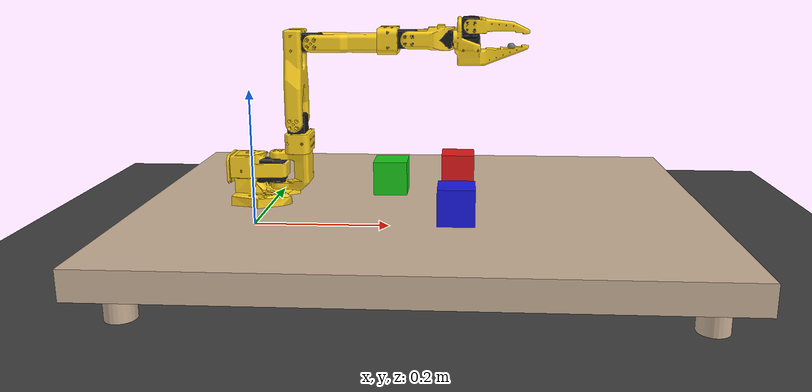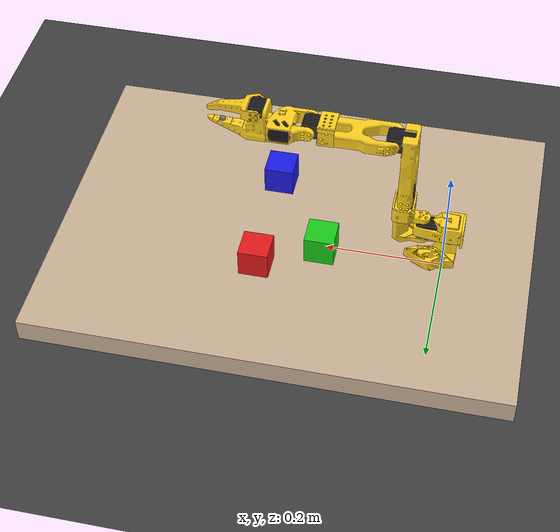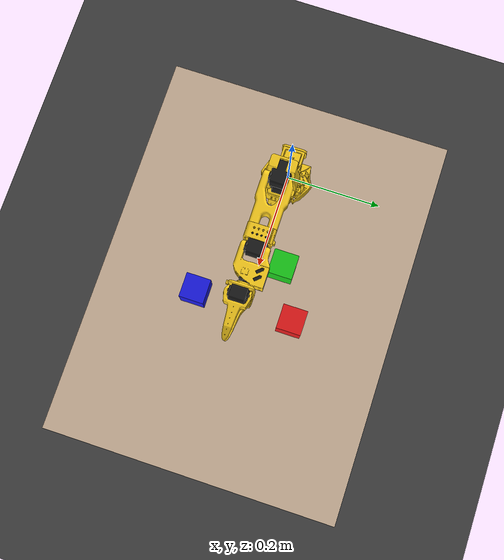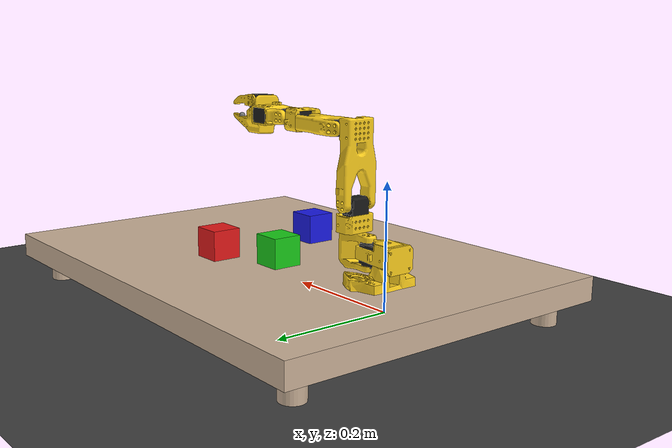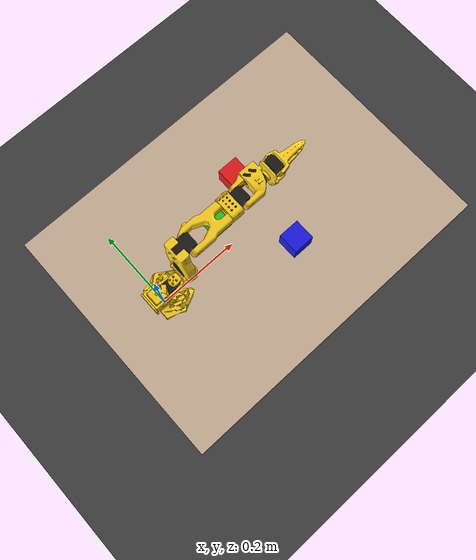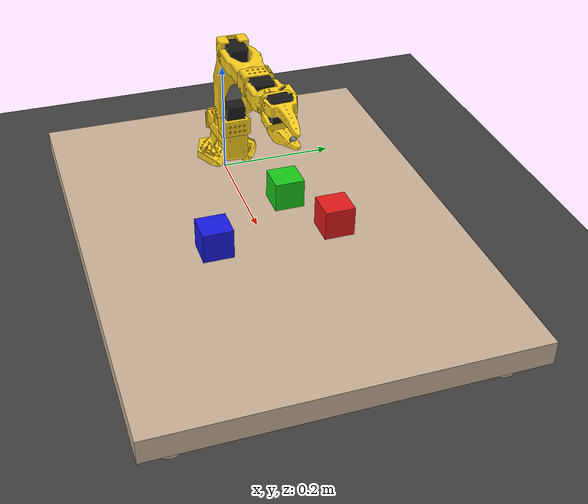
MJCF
<?xml version="1.0" ?>
<!-- SO-101 Block Stacking Environment -->
<!-- Based on so101_new_calib.xml with added table, blocks, and cameras -->
<mujoco model="so101_block_stacking">
  <compiler angle="radian" meshdir="assets" autolimits="true"/>

  <option gravity="0 0 -9.81" timestep="0.002">
    <flag contact="enable" gravity="enable"/>
  </option>

  <default>
    <default class="so101_new_calib">
      <joint damping="1" frictionloss="0.1" armature="0.005"/>
      <position kp="50"/>
      <default class="visual">
        <geom type="mesh" contype="0" conaffinity="0" group="2"/>
      </default>
      <default class="collision">
        <geom group="3"/>
      </default>
    </default>
  </default>

  <!-- Additional joints_properties.xml -->
  <default>
    <default class="sts3215">
      <geom contype="0" conaffinity="0"/>
      <joint damping="0.60" frictionloss="0.052" armature="0.028"/>
      <position kp="17.8"/>
    </default>
    <default class="backlash">
      <joint damping="0.01" frictionloss="0" armature="0.01" limited="true" range="-0.008726646259971648 0.008726646259971648"/>
    </default>
    <!-- Block defaults -->
    <default class="block">
      <geom type="box" size="0.025 0.025 0.025" mass="0.05" friction="1.0 0.005 0.0001" solimp="0.99 0.99 0.001" solref="0.01 1"/>
    </default>
  </default>

  <asset>
    <!-- Robot meshes -->
    <mesh file="waveshare_mounting_plate_so101_v2.stl"/>
    <mesh file="sts3215_03a_v1.stl"/>
    <mesh file="motor_holder_so101_base_v1.stl"/>
    <mesh file="wrist_roll_follower_so101_v1.stl"/>
    <mesh file="moving_jaw_so101_v1.stl"/>
    <mesh file="base_motor_holder_so101_v1.stl"/>
    <mesh file="upper_arm_so101_v1.stl"/>
    <mesh file="wrist_roll_pitch_so101_v2.stl"/>
    <mesh file="under_arm_so101_v1.stl"/>
    <mesh file="rotation_pitch_so101_v1.stl"/>
    <mesh file="motor_holder_so101_wrist_v1.stl"/>
    <mesh file="sts3215_03a_no_horn_v1.stl"/>
    <mesh file="base_so101_v2.stl"/>

    <!-- Materials -->
    <material name="base_motor_holder_so101_v1_material" rgba="1 0.82 0.12 1"/>
    <material name="base_so101_v2_material" rgba="1 0.82 0.12 1"/>
    <material name="sts3215_03a_v1_material" rgba="0.1 0.1 0.1 1"/>
    <material name="waveshare_mounting_plate_so101_v2_material" rgba="1 0.82 0.12 1"/>
    <material name="motor_holder_so101_base_v1_material" rgba="1 0.82 0.12 1"/>
    <material name="rotation_pitch_so101_v1_material" rgba="1 0.82 0.12 1"/>
    <material name="upper_arm_so101_v1_material" rgba="1 0.82 0.12 1"/>
    <material name="under_arm_so101_v1_material" rgba="1 0.82 0.12 1"/>
    <material name="motor_holder_so101_wrist_v1_material" rgba="1 0.82 0.12 1"/>
    <material name="sts3215_03a_no_horn_v1_material" rgba="0.1 0.1 0.1 1.0"/>
    <material name="wrist_roll_pitch_so101_v2_material" rgba="1 0.82 0.12 1"/>
    <material name="wrist_roll_follower_so101_v1_material" rgba="1 0.82 0.12 1"/>
    <material name="moving_jaw_so101_v1_material" rgba="1 0.82 0.12 1"/>

    <!-- Environment materials -->
    <material name="table_mat" rgba="0.8 0.7 0.6 1"/>
    <material name="floor_mat" rgba="0.4 0.4 0.4 1"/>
    <material name="block_red" rgba="0.9 0.1 0.1 1"/>
    <material name="block_blue" rgba="0.1 0.1 0.9 1"/>
    <material name="block_green" rgba="0.1 0.8 0.1 1"/>
    <material name="block_yellow" rgba="0.9 0.9 0.1 1"/>

    <!-- Textures for better visual appearance -->
    <texture name="grid" type="2d" builtin="checker" width="512" height="512" rgb1="0.2 0.2 0.2" rgb2="0.3 0.3 0.3"/>
    <material name="grid_mat" texture="grid" texrepeat="10 10" reflectance="0.1"/>
  </asset>

  <worldbody>
    <!-- Lighting -->
    <light directional="true" pos="0 0 3" dir="0 0 -1" diffuse="0.8 0.8 0.8" specular="0.2 0.2 0.2"/>
    <light directional="true" pos="1 1 3" dir="-0.3 -0.3 -1" diffuse="0.4 0.4 0.4"/>

    <!-- Floor -->
    <geom name="floor" type="plane" size="2 2 0.1" pos="0 0 -0.05" material="grid_mat" contype="1" conaffinity="1"/>

    <!-- Table -->
    <body name="table" pos="0.25 0 0">
      <!-- Table top -->
      <geom name="table_top" type="box" size="0.4 0.3 0.02" pos="0 0 0.02" material="table_mat" contype="1" conaffinity="1" friction="0.8 0.005 0.0001"/>
      <!-- Table legs -->
      <geom name="table_leg1" type="cylinder" size="0.02 0.02" pos="0.35 0.25 -0.02" material="table_mat" contype="1" conaffinity="1"/>
      <geom name="table_leg2" type="cylinder" size="0.02 0.02" pos="0.35 -0.25 -0.02" material="table_mat" contype="1" conaffinity="1"/>
      <geom name="table_leg3" type="cylinder" size="0.02 0.02" pos="-0.35 0.25 -0.02" material="table_mat" contype="1" conaffinity="1"/>
      <geom name="table_leg4" type="cylinder" size="0.02 0.02" pos="-0.35 -0.25 -0.02" material="table_mat" contype="1" conaffinity="1"/>
    </body>

    <!-- Blocks for stacking -->
    <!-- Block 1 - Red -->
    <body name="block_red" pos="0.3 0.1 0.065">
      <freejoint name="block_red_joint"/>
      <geom name="block_red_geom" class="block" material="block_red" contype="1" conaffinity="1"/>
      <site name="block_red_site" pos="0 0 0" size="0.01"/>
    </body>

    <!-- Block 2 - Blue -->
    <body name="block_blue" pos="0.3 -0.1 0.065">
      <freejoint name="block_blue_joint"/>
      <geom name="block_blue_geom" class="block" material="block_blue" contype="1" conaffinity="1"/>
      <site name="block_blue_site" pos="0 0 0" size="0.01"/>
    </body>

    <!-- Block 3 - Green -->
    <body name="block_green" pos="0.2 0.05 0.065">
      <freejoint name="block_green_joint"/>
      <geom name="block_green_geom" class="block" material="block_green" contype="1" conaffinity="1"/>
      <site name="block_green_site" pos="0 0 0" size="0.01"/>
    </body>

    <!-- Robot arm (mounted on table edge) -->
    <body name="base" pos="0 0 0.04" quat="1 0 0 0" childclass="so101_new_calib">
      <inertial pos="0.0137179 -5.19711e-05 0.0334843" mass="0.147" fullinertia="0.000114686 0.000136117 0.000130364 -4.59787e-07 4.97151e-06 9.75275e-08"/>
      <!-- Part base_motor_holder_so101_v1 -->
      <geom type="mesh" class="visual" pos="-0.00636471 -9.94414e-05 -0.0024" quat="0.5 0.5 0.5 0.5" mesh="base_motor_holder_so101_v1" material="base_motor_holder_so101_v1_material"/>
      <!-- Part base_so101_v2 -->
      <geom type="mesh" class="visual" pos="-0.00636471 -8.97657e-09 -0.0024" quat="0.5 0.5 0.5 0.5" mesh="base_so101_v2" material="base_so101_v2_material"/>
      <!-- Part sts3215_03a_v1 -->
      <geom type="mesh" class="visual" pos="0.0263353 -8.97657e-09 0.0437" quat="1 -2.85511e-16 -9.64433e-17 6.12908e-16" mesh="sts3215_03a_v1" material="sts3215_03a_v1_material"/>
      <!-- Part waveshare_mounting_plate_so101_v2 -->
      <geom type="mesh" class="visual" pos="-0.0309827 -0.000199441 0.0474" quat="0.5 0.5 0.5 0.5" mesh="waveshare_mounting_plate_so101_v2" material="waveshare_mounting_plate_so101_v2_material"/>
      <!-- Frame baseframe -->
      <site group="3" name="baseframe" pos="8.67362e-19 9.55596e-18 3.46945e-18" quat="1 -8.17396e-19 3.78392e-17 2.22045e-16"/>

      <!-- Link shoulder -->
      <body name="shoulder" pos="0.0388353 -8.97657e-09 0.0624" quat="3.56167e-16 1.22818e-15 -1 -4.14635e-16">
        <joint axis="0 0 1" name="shoulder_pan" type="hinge" range="-1.9198621771937616 1.9198621771937634" class="sts3215"/>
        <inertial pos="-0.0307604 -1.66727e-05 -0.0252713" mass="0.100006" fullinertia="8.3759e-05 8.10403e-05 2.39783e-05 7.55525e-08 -1.16342e-06 1.54663e-07"/>
        <geom type="mesh" class="visual" pos="-0.0303992 0.000422241 -0.0417" quat="0.5 0.5 0.5 -0.5" mesh="sts3215_03a_v1" material="sts3215_03a_v1_material"/>
        <geom type="mesh" class="collision" pos="-0.0303992 0.000422241 -0.0417" quat="0.5 0.5 0.5 -0.5" mesh="sts3215_03a_v1" material="sts3215_03a_v1_material"/>
        <geom type="mesh" class="visual" pos="-0.0675992 -0.000177759 0.0158499" quat="0.5 0.5 -0.5 0.5" mesh="motor_holder_so101_base_v1" material="motor_holder_so101_base_v1_material"/>
        <geom type="mesh" class="collision" pos="-0.0675992 -0.000177759 0.0158499" quat="0.5 0.5 -0.5 0.5" mesh="motor_holder_so101_base_v1" material="motor_holder_so101_base_v1_material"/>
        <geom type="mesh" class="visual" pos="0.0122008 2.22413e-05 0.0464" quat="0.707107 -0.707107 -0 8.3163e-34" mesh="rotation_pitch_so101_v1" material="rotation_pitch_so101_v1_material"/>
        <geom type="mesh" class="collision" pos="0.0122008 2.22413e-05 0.0464" quat="0.707107 -0.707107 -0 8.3163e-34" mesh="rotation_pitch_so101_v1" material="rotation_pitch_so101_v1_material"/>

        <!-- Link upper_arm -->
        <body name="upper_arm" pos="-0.0303992 -0.0182778 -0.0542" quat="0.5 -0.5 -0.5 -0.5">
          <joint axis="0 0 1" name="shoulder_lift" type="hinge" range="-1.7453292519943224 1.7453292519943366" class="sts3215"/>
          <inertial pos="-0.0898471 -0.00838224 0.0184089" mass="0.103" fullinertia="4.08002e-05 0.000147318 0.000142487 -1.97819e-05 -4.03016e-08 8.97326e-09"/>
          <geom type="mesh" class="visual" pos="-0.11257 -0.0155 0.0187" quat="4.56308e-16 -0.707107 0.707107 -1.37383e-16" mesh="sts3215_03a_v1" material="sts3215_03a_v1_material"/>
          <geom type="mesh" class="collision" pos="-0.11257 -0.0155 0.0187" quat="4.56308e-16 -0.707107 0.707107 -1.37383e-16" mesh="sts3215_03a_v1" material="sts3215_03a_v1_material"/>
          <geom type="mesh" class="visual" pos="-0.065085 0.012 0.0182" quat="0 1 0 0" mesh="upper_arm_so101_v1" material="upper_arm_so101_v1_material"/>
          <geom type="mesh" class="collision" pos="-0.065085 0.012 0.0182" quat="0 1 0 0" mesh="upper_arm_so101_v1" material="upper_arm_so101_v1_material"/>

          <!-- Link lower_arm -->
          <body name="lower_arm" pos="-0.11257 -0.028 1.73763e-16" quat="0.707107 -5.98613e-17 -2.58051e-17 0.707107">
            <joint axis="0 0 1" name="elbow_flex" type="hinge" range="-1.69 1.69" class="sts3215"/>
            <inertial pos="-0.0980701 0.00324376 0.0182831" mass="0.104" fullinertia="2.87438e-05 0.000159844 0.00014529 7.41152e-06 1.26409e-06 -4.90188e-08"/>
            <geom type="mesh" class="visual" pos="-0.0648499 -0.032 0.0182" quat="0 1 0 0" mesh="under_arm_so101_v1" material="under_arm_so101_v1_material"/>
            <geom type="mesh" class="collision" pos="-0.0648499 -0.032 0.0182" quat="0 1 0 0" mesh="under_arm_so101_v1" material="under_arm_so101_v1_material"/>
            <geom type="mesh" class="visual" pos="-0.0648499 -0.032 0.018" quat="3.92687e-16 -1 -1.9186e-15 -6.38378e-16" mesh="motor_holder_so101_wrist_v1" material="motor_holder_so101_wrist_v1_material"/>
            <geom type="mesh" class="collision" pos="-0.0648499 -0.032 0.018" quat="3.92687e-16 -1 -1.9186e-15 -6.38378e-16" mesh="motor_holder_so101_wrist_v1" material="motor_holder_so101_wrist_v1_material"/>
            <geom type="mesh" class="visual" pos="-0.1224 0.0052 0.0187" quat="7.21645e-16 1.56949e-15 1 -3.33067e-16" mesh="sts3215_03a_v1" material="sts3215_03a_v1_material"/>
            <geom type="mesh" class="collision" pos="-0.1224 0.0052 0.0187" quat="7.21645e-16 1.56949e-15 1 -3.33067e-16" mesh="sts3215_03a_v1" material="sts3215_03a_v1_material"/>

            <!-- Link wrist -->
            <body name="wrist" pos="-0.1349 0.0052 3.62355e-17" quat="0.707107 9.58722e-16 -7.51313e-16 -0.707107">
              <joint axis="0 0 1" name="wrist_flex" type="hinge" range="-1.6580628494556928 1.6580627293335335" class="sts3215"/>
              <inertial pos="-0.000103312 -0.0386143 0.0281156" mass="0.079" fullinertia="3.68263e-05 2.5391e-05 2.1e-05 1.7893e-08 -5.28128e-08 3.6412e-06"/>
              <geom type="mesh" class="visual" pos="8.32667e-17 -0.0424 0.0306" quat="0.5 0.5 0.5 -0.5" mesh="sts3215_03a_no_horn_v1" material="sts3215_03a_no_horn_v1_material"/>
              <geom type="mesh" class="collision" pos="8.32667e-17 -0.0424 0.0306" quat="0.5 0.5 0.5 -0.5" mesh="sts3215_03a_no_horn_v1" material="sts3215_03a_no_horn_v1_material"/>
              <geom type="mesh" class="visual" pos="0 -0.028 0.0181" quat="0.5 -0.5 -0.5 -0.5" mesh="wrist_roll_pitch_so101_v2" material="wrist_roll_pitch_so101_v2_material"/>
              <geom type="mesh" class="collision" pos="0 -0.028 0.0181" quat="0.5 -0.5 -0.5 -0.5" mesh="wrist_roll_pitch_so101_v2" material="wrist_roll_pitch_so101_v2_material"/>

              <!-- Wrist camera (mounted on wrist motor, above the motor) -->
              <camera name="wrist_cam" pos="0 -0.05 0.06" euler="-1.57 0 0" fovy="70"/>

              <!-- Link gripper -->
              <body name="gripper" pos="5.55112e-17 -0.0611 0.0181" quat="0.0172091 -0.0172091 0.706897 0.706897">
                <joint axis="0 0 1" name="wrist_roll" type="hinge" range="-2.7438472969992493 2.841206309382605" class="sts3215"/>
                <inertial pos="0.000213627 0.000245138 -0.025187" mass="0.087" fullinertia="2.75087e-05 4.33657e-05 3.45059e-05 -3.35241e-07 -5.7352e-06 -5.17847e-08"/>
                <geom type="mesh" class="visual" pos="0.0077 0.0001 -0.0234" quat="0.707107 -0.707107 1.66015e-15 6.45094e-15" mesh="sts3215_03a_v1" material="sts3215_03a_v1_material"/>
                <geom type="mesh" class="collision" pos="0.0077 0.0001 -0.0234" quat="0.707107 -0.707107 1.66015e-15 6.45094e-15" mesh="sts3215_03a_v1" material="sts3215_03a_v1_material"/>
                <geom type="mesh" class="visual" pos="8.32667e-17 -0.000218214 0.000949706" quat="0 1 0 0" mesh="wrist_roll_follower_so101_v1" material="wrist_roll_follower_so101_v1_material"/>
                <geom type="mesh" class="collision" pos="8.32667e-17 -0.000218214 0.000949706" quat="0 1 0 0" mesh="wrist_roll_follower_so101_v1" material="wrist_roll_follower_so101_v1_material"/>

                <!-- Wrist camera mount point -->
                <site name="wrist_camera_site" pos="-0.01 0 -0.08" quat="0.707107 0 0.707107 0" size="0.005"/>

                <!-- Frame gripperframe -->
                <site group="3" name="gripperframe" pos="-0.0079 -0.000218121 -0.0981274" quat="0.707107 -0 0.707107 -2.37788e-17"/>

                <!-- Link moving_jaw_so101_v1 -->
                <body name="moving_jaw_so101_v1" pos="0.0202 0.0188 -0.0234" quat="0.707107 0.707107 -1.85362e-08 1.85362e-08">
                  <joint axis="0 0 1" name="gripper" type="hinge" range="-0.17453297762778586 1.7453291995659765" class="sts3215"/>
                  <inertial pos="-0.00157495 -0.0300244 0.0192755" mass="0.012" fullinertia="6.61427e-06 1.89032e-06 5.28738e-06 -3.19807e-07 -5.90717e-09 -1.09945e-07"/>
                  <geom type="mesh" class="visual" pos="-5.55112e-17 -5.55112e-17 0.0189" quat="1 -0 3.00524e-16 -2.00834e-17" mesh="moving_jaw_so101_v1" material="moving_jaw_so101_v1_material"/>
                  <geom type="mesh" class="collision" pos="-5.55112e-17 -5.55112e-17 0.0189" quat="1 -0 3.00524e-16 -2.00834e-17" mesh="moving_jaw_so101_v1" material="moving_jaw_so101_v1_material"/>
                </body>
              </body>
            </body>
          </body>
        </body>
      </body>
    </body>

    <!-- Camera 1: Top view (bird's eye view, looking straight down at table) -->
    <camera name="top_cam" pos="0.25 0 0.8" xyaxes="1 0 0 0 1 0" fovy="70"/>

    <!-- Camera 2: Wrist view is attached to wrist body (see above in wrist body definition) -->

    <!-- Camera 3: Right side view (positioned to see entire workspace) -->
    <camera name="right_cam" pos="0.0 -0.7 0.35" xyaxes="1 0 0 0 0.6 0.8" fovy="60"/>

  </worldbody>

  <actuator>
    <position class="sts3215" name="shoulder_pan" joint="shoulder_pan" forcerange="-3.35 3.35" ctrlrange="-1.91986 1.91986"/>
    <position class="sts3215" name="shoulder_lift" joint="shoulder_lift" forcerange="-3.35 3.35" ctrlrange="-1.74533 1.74533"/>
    <position class="sts3215" name="elbow_flex" joint="elbow_flex" forcerange="-3.35 3.35" ctrlrange="-1.69 1.69"/>
    <position class="sts3215" name="wrist_flex" joint="wrist_flex" forcerange="-3.35 3.35" ctrlrange="-1.65806 1.65806"/>
    <position class="sts3215" name="wrist_roll" joint="wrist_roll" forcerange="-3.35 3.35" ctrlrange="-2.74385 2.84121"/>
    <position class="sts3215" name="gripper" joint="gripper" forcerange="-3.35 3.35" ctrlrange="-0.17453 1.74533"/>
  </actuator>

  <equality/>

</mujoco>
